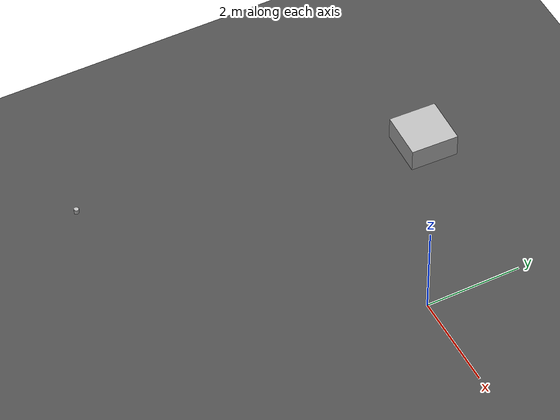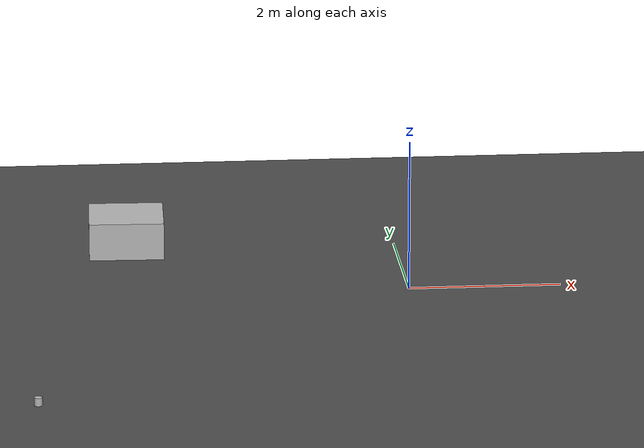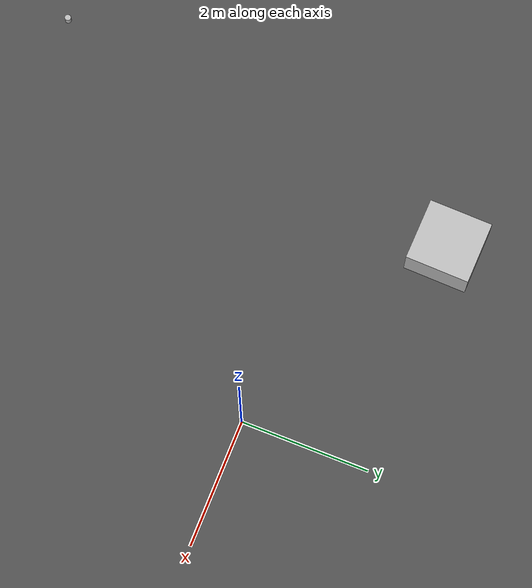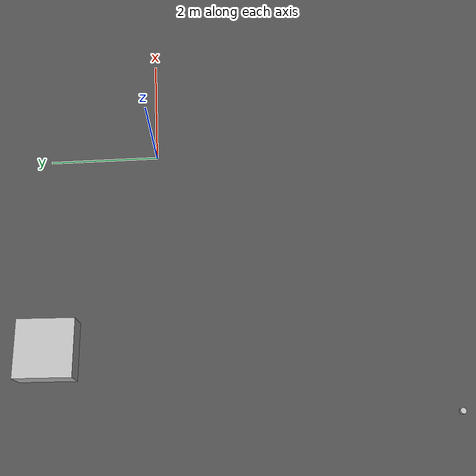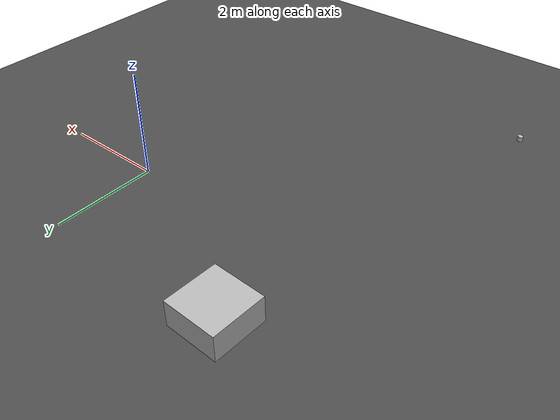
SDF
<sdf version="1.6">
 <world name="default">
  <plugin name="ros_link_attacher_plugin" filename="libgazebo_ros_link_attacher.so"/>
  <light name="sun" type="directional">
   <pose>0 0 10 0 -0 0</pose>
   <diffuse>0.8 0.8 0.8 1</diffuse>
   <specular>0.2 0.2 0.2 1</specular>
   <attenuation>
    <range>1000</range>
    <constant>0.9</constant>
    <linear>0.01</linear>
    <quadratic>0.001</quadratic>
   </attenuation>
   <direction>-0.5 0.1 -0.9</direction>
  </light>
  <model name="ground_plane">
   <static>1</static>
   <link name="link">
    <collision name="collision">
     <geometry><plane><normal>0 0 1</normal><size>100 100</size></plane></geometry>
     <surface>
      <contact><collide_bitmask>65535</collide_bitmask></contact>
      <friction><ode><mu>100</mu><mu2>50</mu2></ode></friction>
     </surface>
    </collision>
    <visual name="visual">
     <cast_shadows>0</cast_shadows>
     <geometry><plane><normal>0 0 1</normal><size>100 100</size></plane></geometry>
     <material>
      <script><uri>file://media/materials/scripts/gazebo.material</uri><name>Gazebo/Grey</name></script>
     </material>
    </visual>
   </link>
  </model>
  <model name="asphalt_plane">
   <static>1</static>
   <link name="link">
    <collision name="collision"><geometry><box><size>200 200 0.1</size></box></geometry></collision>
    <visual name="visual">
     <cast_shadows>0</cast_shadows>
     <geometry><box><size>200 200 0.1</size></box></geometry>
     <material>
      <script>
       <uri>model://asphalt_plane/materials/scripts</uri>
       <uri>model://asphalt_plane/materials/textures</uri>
       <name>vrc/asphalt</name>
      </script>
     </material>
    </visual>
   </link>
  </model>
  <model name="dummy_probe">
   <static>false</static>
   <pose>-5 -5 0.2999 -1e-06 -0.000182 -0.031648</pose>
   <link name="link">
    <inertial>
     <mass>.050</mass>
     <inertia><ixx>.000042</ixx><ixy>0</ixy><ixz>0</ixz><iyy>.000042</iyy><iyz>0</iyz><izz>.0000625</izz></inertia>
    </inertial>
    <collision name="collision">
     <geometry><cylinder><radius>.05</radius><length>.1</length></cylinder></geometry>
     <surface><friction><ode><mu>100</mu><mu2>50</mu2></ode></friction></surface>
    </collision>
    <visual name="visual">
     <cast_shadows>false</cast_shadows>
     <geometry><cylinder><radius>.05</radius><length>.1</length></cylinder></geometry>
    </visual>
   </link>
  </model>
  <physics name="default_physics" default="0" type="ode">
   <ode>
    <solver>
     <type>quick</type>
     <iters>10</iters>
     <sor>1.3</sor>
     <use_dynamic_moi_rescaling>0</use_dynamic_moi_rescaling>
    </solver>
    <constraints>
     <cfm>0</cfm>
     <erp>0.2</erp>
     <contact_max_correcting_vel>100</contact_max_correcting_vel>
     <contact_surface_layer>0.001</contact_surface_layer>
    </constraints>
   </ode>
   <max_step_size>0.004</max_step_size>
   <real_time_factor>1</real_time_factor>
   <real_time_update_rate>250</real_time_update_rate>
  </physics>
  <gravity>0 0 -9.8066</gravity>
  <magnetic_field>6e-06 2.3e-05 -4.2e-05</magnetic_field>
  <atmosphere type="adiabatic"/>
  <scene><ambient>0.4 0.4 0.4 1</ambient><background>0.7 0.7 0.7 1</background><shadows>1</shadows></scene>
  <spherical_coordinates>
   <surface_model>EARTH_WGS84</surface_model>
   <latitude_deg>0</latitude_deg>
   <longitude_deg>0</longitude_deg>
   <elevation>0</elevation>
   <heading_deg>0</heading_deg>
  </spherical_coordinates>
  <model name="apriltag">
   <static>0</static>
   <link name="link">
    <inertial>
     <mass>1</mass>
     <inertia><ixx>.01</ixx><ixy>0</ixy><ixz>0</ixz><iyy>.01</iyy><iyz>0</iyz><izz>.01</izz></inertia>
    </inertial>
    <collision name="collision">
     <geometry><box><size>1 1 0.5</size></box></geometry>
     <surface><friction><ode><mu>100</mu><mu2>50</mu2></ode></friction></surface>
    </collision>
    <visual name="visual">
     <cast_shadows>0</cast_shadows>
     <geometry><box><size>1 1 0.5</size></box></geometry>
     <material><script><name>AprilTag/Image</name><uri>__default__</uri></script></material>
    </visual>
   </link>
   <pose>-3.63181 1.91151 0.2999 -1e-06 -0.000182 -0.031648</pose>
  </model>
 </world>
</sdf>
